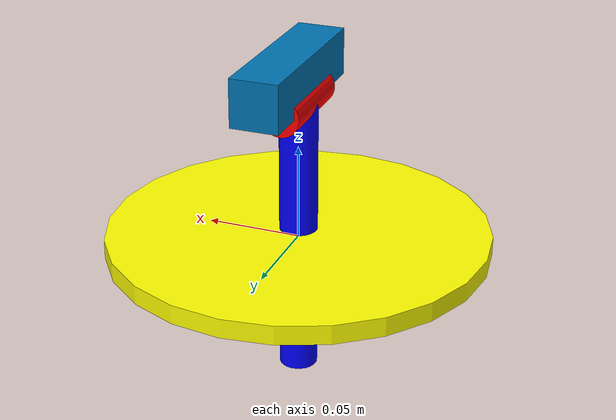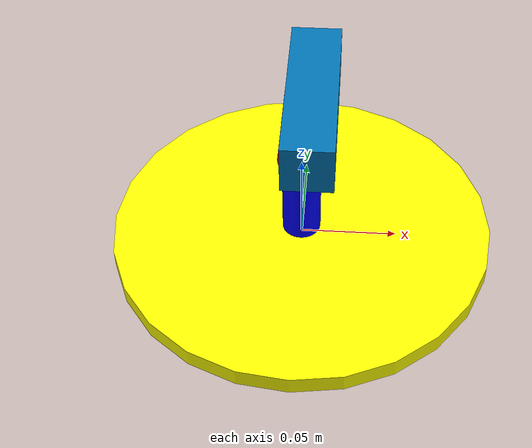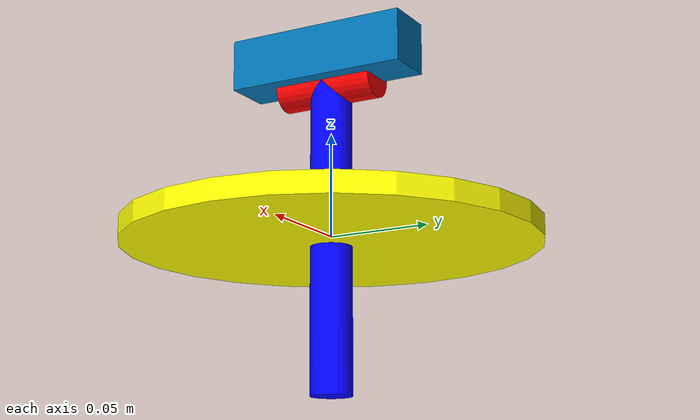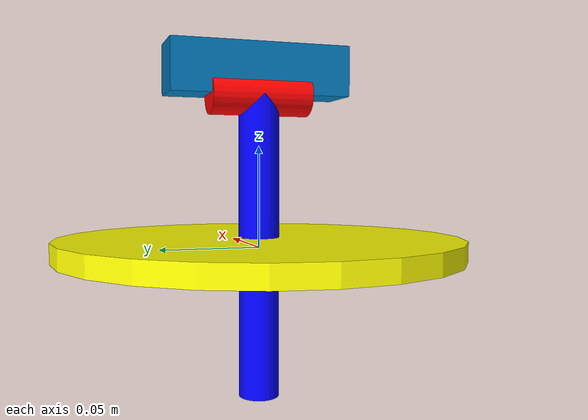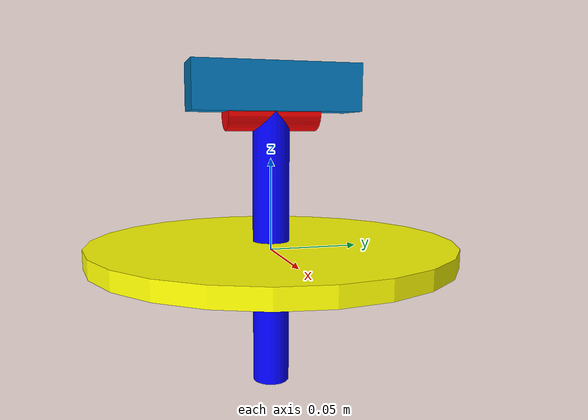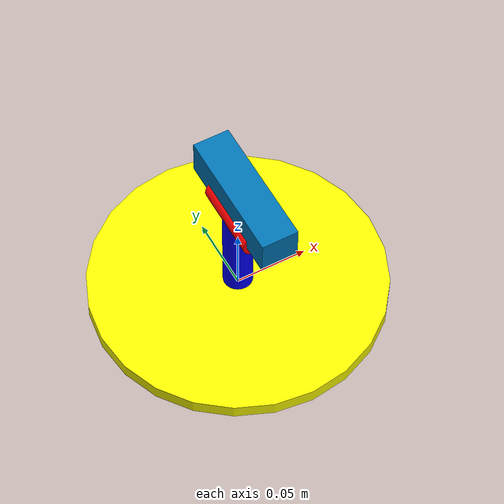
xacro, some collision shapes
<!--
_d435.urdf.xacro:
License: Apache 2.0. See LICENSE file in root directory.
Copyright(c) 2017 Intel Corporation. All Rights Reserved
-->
<?xml version="1.0"?>

<robot xmlns:xacro="http://www.ros.org/wiki/xacro"
    xmlns:sensor="http://playerstage.sourceforge.net/gazebo/xmlschema/#sensor"
  xmlns:controller="http://playerstage.sourceforge.net/gazebo/xmlschema/#controller"
  xmlns:interface="http://playerstage.sourceforge.net/gazebo/xmlschema/#interface"
    name="gretchen">

    <xacro:property name="deg_to_rad" value="0.01745329251994329577" />
    <xacro:property name="base_link_length" value="0.01" />
    <xacro:property name="base_link_radius" value="0.1" />

    <xacro:property name="pan_link_length" value="0.15" />
    <xacro:property name="pan_link_radius" value="0.01" />

    <xacro:property name="tilt_link_length" value="0.05" />
    <xacro:property name="tilt_link_radius" value="0.01" />

    <xacro:macro name="inertial_matrix" params="mass">
               <inertial>
                       <mass value="${mass}" />
                       <inertia ixx="1." ixy="0.0" ixz="0.0"
                                iyy="1." iyz="0.0"
                                izz="1." />
               </inertial>
    </xacro:macro>

  <link name="base_link">

    <visual>
      <geometry>
         <cylinder length="${base_link_length}" radius="${base_link_radius}"/>
      </geometry>
      <origin rpy="0 0 0" xyz="0 0 0"/>
      <material name="yellow">
        <color rgba="1 1 0 1"/>
      </material>
    </visual>

    <collision>
      <geometry>
         <cylinder length="${base_link_length+0.02}" radius="0.2"/>
      </geometry>
      <origin rpy="0 0 0" xyz="0 0 0"/>
    </collision>
    <xacro:inertial_matrix mass="1"/>
  </link>

  <joint name="pan_joint" type="revolute">
    <parent link="base_link"/>
    <child link="pan_link"/>
    <origin xyz="0 0 0"/>
    <axis xyz="0 0 1" />
    <limit effort="300" velocity="0.1" lower="-3.14" upper="3.14"/>
    <dynamics damping="50" friction="1"/>
  </joint>

  <link name="pan_link">
    <visual>
      <geometry>
         <cylinder length="${pan_link_length}" radius="${pan_link_radius}"/>
      </geometry>
      <origin rpy="0 0 0" xyz="0 0 0"/>
      <material name="blue">
        <color rgba="0 0 1 1"/>
      </material>
    </visual>
    <collision>
      <geometry>
         <cylinder length="${pan_link_length}" radius="${pan_link_radius+0.02}"/>
      </geometry>
      <origin rpy="0 0 0" xyz="0 0 0"/>
    </collision>
    <xacro:inertial_matrix mass="1"/>
  </link>

  <joint name="tilt_joint" type="revolute">
    <parent link="pan_link"/>
    <child link="tilt_link"/>
    <origin xyz="0 0 ${pan_link_length/2}" rpy="${90.0 * deg_to_rad} 0 0"/>
    <axis xyz="0 0 1" />
    <limit effort="300" velocity="0.1" lower="-3.14" upper="3.14"/>
    <dynamics damping="50" friction="1"/>
  </joint>

  <link name="tilt_link">
    <visual>
      <geometry>
         <cylinder length="${tilt_link_length}" radius="${tilt_link_radius}"/>
      </geometry>
      <origin rpy="0 0 0" xyz="0 0 0"/>
      <material name="red">
        <color rgba="1 0 0 1"/>
      </material>
    </visual>
    <collision>
      <geometry>
         <cylinder length="${tilt_link_length}" radius="${tilt_link_radius+0.2}"/>
      </geometry>
      <origin rpy="0 0 0" xyz="0 0 0"/>
    </collision>
    <xacro:inertial_matrix mass="1"/>
  </link>

   <xacro:macro name="transmission_block" params="joint_name">
    <transmission name="tran1">
      <type>transmission_interface/SimpleTransmission</type>
      <joint name="${joint_name}">
        <hardwareInterface>hardware_interface/PositionJointInterface</hardwareInterface>
      </joint>
      <actuator name="motor1">
        <hardwareInterface>hardware_interface/PositionJointInterface</hardwareInterface>
        <mechanicalReduction>1</mechanicalReduction>
      </actuator>
    </transmission>
   </xacro:macro>

  <gazebo reference="base_link">
    <material>Gazebo/Black</material>
  </gazebo>

  <gazebo reference="pan_link">
    <material>Gazebo/Blue</material>
  </gazebo>

  <gazebo reference="tilt_link">
    <material>Gazebo/Red</material>
  </gazebo>

   <xacro:transmission_block joint_name="pan_joint"/>
   <xacro:transmission_block joint_name="tilt_joint"/>

 <gazebo>
    <plugin name="gazebo_ros_control" filename="libgazebo_ros_control.so">
    <robotNamespace>/gretchen</robotNamespace>
    </plugin>
  </gazebo>

  <xacro:include filename="$(find realsense2_description)/urdf/_d435.urdf.xacro" />

  <xacro:sensor_d435 parent="tilt_link">
    <origin xyz="${(tilt_link_radius+0)/ 2} 0. 0" rpy="${-90 * deg_to_rad} 0 0" />
  </xacro:sensor_d435>
</robot>

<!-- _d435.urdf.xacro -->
<robot name="sensor_d435" xmlns:xacro="http://ros.org/wiki/xacro">
  <!-- Includes -->
  <xacro:include filename="$(find realsense2_description)/urdf/_materials.urdf.xacro" />

  <xacro:macro name="sensor_d435" params="parent *origin name:=camera">
    <xacro:property name="M_PI" value="3.1415926535897931" />

    <!-- The following values are approximate, and the camera node
     publishing TF values with actual calibrated camera extrinsic values -->
    <xacro:property name="d435_cam_depth_to_infra1_offset" value="0.0"/>
    <xacro:property name="d435_cam_depth_to_infra2_offset" value="-0.050"/>
    <xacro:property name="d435_cam_depth_to_color_offset" value="0.015"/>

    <!-- The following values model the aluminum peripherial case for the
  	D435 camera, with the camera joint represented by the actual
  	peripherial camera tripod mount -->
    <xacro:property name="d435_cam_width" value="0.090"/>
    <xacro:property name="d435_cam_height" value="0.025"/>
    <xacro:property name="d435_cam_depth" value="0.02505"/>
    <xacro:property name="d435_cam_mount_from_center_offset" value="0.0149"/>

    <!-- The following offset is relative the the physical D435 camera peripherial
  	camera tripod mount -->
    <xacro:property name="d435_cam_depth_px" value="${d435_cam_mount_from_center_offset}"/>
    <xacro:property name="d435_cam_depth_py" value="0.0175"/>
    <xacro:property name="d435_cam_depth_pz" value="${d435_cam_height/2}"/>

    <!-- camera body, with origin at bottom screw mount -->
    <joint name="${name}_joint" type="fixed">
      <xacro:insert_block name="origin" />
      <parent link="${parent}"/>
      <child link="${name}_bottom_screw_frame" />
    </joint>
    <link name="${name}_bottom_screw_frame"/>

    <joint name="${name}_link_joint" type="fixed">
      <origin xyz="0 ${d435_cam_depth_py} ${d435_cam_depth_pz}" rpy="0 0 0"/>
      <parent link="${name}_bottom_screw_frame"/>
      <child link="${name}_link" />
    </joint>

    <link name="${name}_link">
      <visual>
        <origin xyz="${d435_cam_mount_from_center_offset} ${-d435_cam_depth_py} 0" rpy="${M_PI/2} 0 ${M_PI/2}"/>
        <geometry>
	        <mesh filename="package://realsense2_description/meshes/d435.dae" />
        </geometry>
      </visual>
      <collision>
        <origin xyz="0 ${-d435_cam_depth_py} 0" rpy="0 0 0"/>
        <geometry>
          <box size="${d435_cam_depth} ${d435_cam_width} ${d435_cam_height}"/>
        </geometry>
      </collision>
      <inertial>
        <!-- The following are not reliable values, and should not be used for modeling -->
        <mass value="0.564" />
        <origin xyz="0 0 0" />
        <inertia ixx="0.003881243" ixy="0.0" ixz="0.0" iyy="0.000498940" iyz="0.0" izz="0.003879257" />
      </inertial>
    </link>

    <!-- Use the nominal extrinsics between camera frames if the calibrated extrinsics aren't being published. e.g. running the device in simulation  -->
  </xacro:macro>
</robot>
